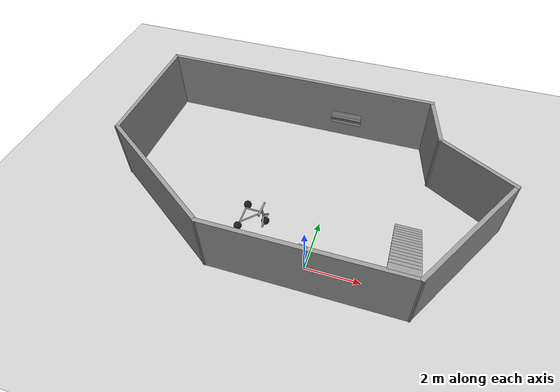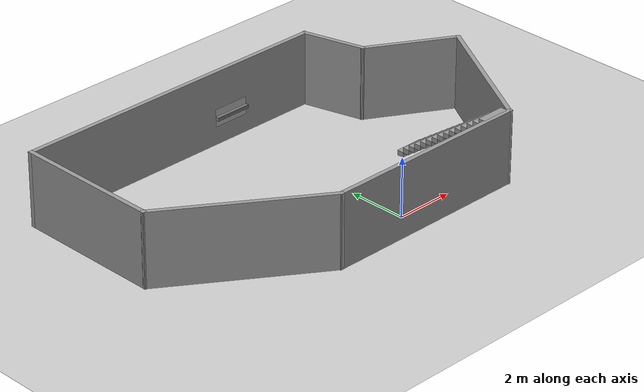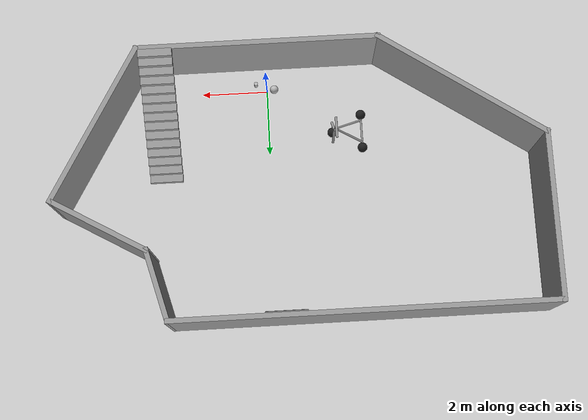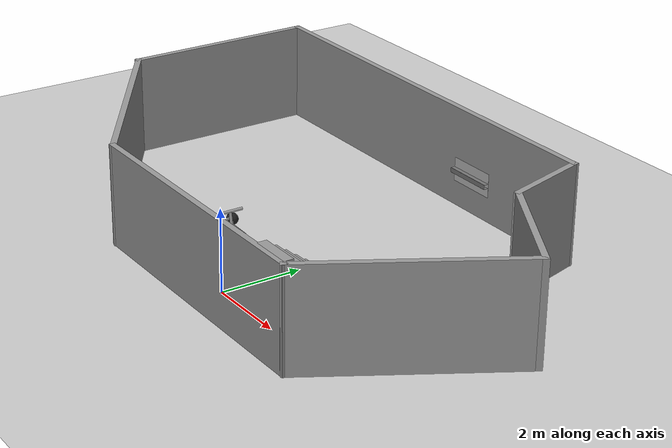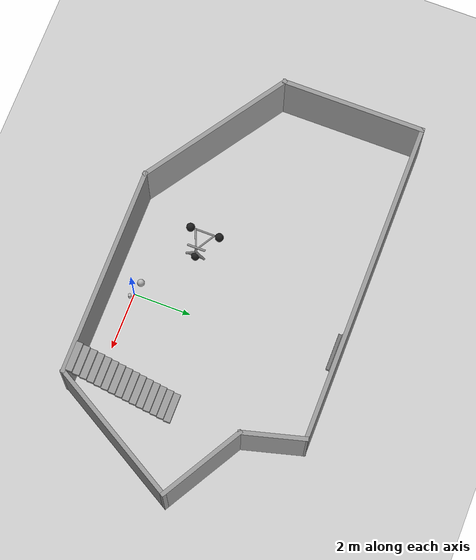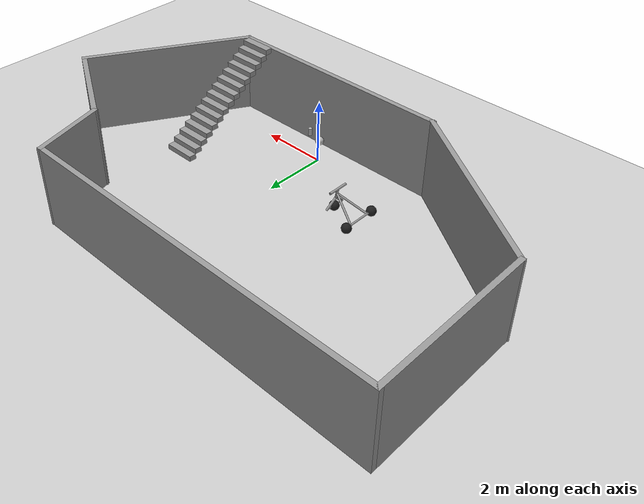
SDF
<sdf version="1.6">
 <world name="default">
  <light name="sun" type="directional">
   <pose>0 0 10 0 -0 0</pose>
   <diffuse>0.8 0.8 0.8 1</diffuse>
   <specular>0.2 0.2 0.2 1</specular>
   <attenuation>
    <range>1000</range>
    <constant>0.9</constant>
    <linear>0.01</linear>
    <quadratic>0.001</quadratic>
   </attenuation>
   <direction>-0.5 0.1 -0.9</direction>
  </light>
  <model name="ground_plane">
   <static>1</static>
   <link name="link">
    <collision name="collision">
     <geometry><plane><normal>0 0 1</normal><size>100 100</size></plane></geometry>
     <surface>
      <contact><collide_bitmask>65535</collide_bitmask></contact>
      <friction><ode><mu>100</mu><mu2>50</mu2></ode></friction>
     </surface>
    </collision>
    <visual name="visual">
     <cast_shadows>0</cast_shadows>
     <geometry><plane><normal>0 0 1</normal><size>100 100</size></plane></geometry>
     <material>
      <script><uri>file://media/materials/scripts/gazebo.material</uri><name>Gazebo/Grey</name></script>
     </material>
    </visual>
   </link>
  </model>
  <gravity>0 0 -9.8</gravity>
  <magnetic_field>6e-06 2.3e-05 -4.2e-05</magnetic_field>
  <atmosphere type="adiabatic"/>
  <physics name="default_physics" default="0" type="ode">
   <max_step_size>0.001</max_step_size>
   <real_time_factor>1</real_time_factor>
   <real_time_update_rate>1000</real_time_update_rate>
  </physics>
  <scene><ambient>0.4 0.4 0.4 1</ambient><background>0.7 0.7 0.7 1</background><shadows>1</shadows></scene>
  <audio><device>default</device></audio>
  <spherical_coordinates>
   <surface_model>EARTH_WGS84</surface_model>
   <latitude_deg>0</latitude_deg>
   <longitude_deg>0</longitude_deg>
   <elevation>0</elevation>
   <heading_deg>0</heading_deg>
  </spherical_coordinates>
  <model name="salinhasimples">
   <pose>-0.864299 3.18437 0 0 -0 0</pose>
   <link name="Stairs_1">
    <visual name="Stairs_1_Visual_0">
     <pose>4.06078 -0.564021 0.083333 0 -0 0</pose>
     <geometry><box><size>1 0.233333 0.166667</size></box></geometry>
     <material>
      <script><uri>file://media/materials/scripts/gazebo.material</uri><name>Gazebo/Grey</name></script>
      <ambient>1 1 1 1</ambient>
     </material>
     <meta><layer>0</layer></meta>
    </visual>
    <collision name="Stairs_1_Collision_0">
     <geometry><box><size>1 0.233333 0.166667</size></box></geometry>
     <pose>4.06078 -0.564021 0.083333 0 -0 0</pose>
    </collision>
    <visual name="Stairs_1_Visual_1">
     <pose>4.06078 -0.797355 0.25 0 -0 0</pose>
     <geometry><box><size>1 0.233333 0.166667</size></box></geometry>
     <material>
      <script><uri>file://media/materials/scripts/gazebo.material</uri><name>Gazebo/Grey</name></script>
      <ambient>1 1 1 1</ambient>
     </material>
     <meta><layer>0</layer></meta>
    </visual>
    <collision name="Stairs_1_Collision_1">
     <geometry><box><size>1 0.233333 0.166667</size></box></geometry>
     <pose>4.06078 -0.797355 0.25 0 -0 0</pose>
    </collision>
    <visual name="Stairs_1_Visual_2">
     <pose>4.06078 -1.03069 0.416667 0 -0 0</pose>
     <geometry><box><size>1 0.233333 0.166667</size></box></geometry>
     <material>
      <script><uri>file://media/materials/scripts/gazebo.material</uri><name>Gazebo/Grey</name></script>
      <ambient>1 1 1 1</ambient>
     </material>
     <meta><layer>0</layer></meta>
    </visual>
    <collision name="Stairs_1_Collision_2">
     <geometry><box><size>1 0.233333 0.166667</size></box></geometry>
     <pose>4.06078 -1.03069 0.416667 0 -0 0</pose>
    </collision>
    <visual name="Stairs_1_Visual_3">
     <pose>4.06078 -1.26402 0.583333 0 -0 0</pose>
     <geometry><box><size>1 0.233333 0.166667</size></box></geometry>
     <material>
      <script><uri>file://media/materials/scripts/gazebo.material</uri><name>Gazebo/Grey</name></script>
      <ambient>1 1 1 1</ambient>
     </material>
     <meta><layer>0</layer></meta>
    </visual>
    <collision name="Stairs_1_Collision_3">
     <geometry><box><size>1 0.233333 0.166667</size></box></geometry>
     <pose>4.06078 -1.26402 0.583333 0 -0 0</pose>
    </collision>
    <visual name="Stairs_1_Visual_4">
     <pose>4.06078 -1.49735 0.75 0 -0 0</pose>
     <geometry><box><size>1 0.233333 0.166667</size></box></geometry>
     <material>
      <script><uri>file://media/materials/scripts/gazebo.material</uri><name>Gazebo/Grey</name></script>
      <ambient>1 1 1 1</ambient>
     </material>
     <meta><layer>0</layer></meta>
    </visual>
    <collision name="Stairs_1_Collision_4">
     <geometry><box><size>1 0.233333 0.166667</size></box></geometry>
     <pose>4.06078 -1.49735 0.75 0 -0 0</pose>
    </collision>
    <visual name="Stairs_1_Visual_5">
     <pose>4.06078 -1.73069 0.916667 0 -0 0</pose>
     <geometry><box><size>1 0.233333 0.166667</size></box></geometry>
     <material>
      <script><uri>file://media/materials/scripts/gazebo.material</uri><name>Gazebo/Grey</name></script>
      <ambient>1 1 1 1</ambient>
     </material>
     <meta><layer>0</layer></meta>
    </visual>
    <collision name="Stairs_1_Collision_5">
     <geometry><box><size>1 0.233333 0.166667</size></box></geometry>
     <pose>4.06078 -1.73069 0.916667 0 -0 0</pose>
    </collision>
    <visual name="Stairs_1_Visual_6">
     <pose>4.06078 -1.96402 1.08333 0 -0 0</pose>
     <geometry><box><size>1 0.233333 0.166667</size></box></geometry>
     <material>
      <script><uri>file://media/materials/scripts/gazebo.material</uri><name>Gazebo/Grey</name></script>
      <ambient>1 1 1 1</ambient>
     </material>
     <meta><layer>0</layer></meta>
    </visual>
    <collision name="Stairs_1_Collision_6">
     <geometry><box><size>1 0.233333 0.166667</size></box></geometry>
     <pose>4.06078 -1.96402 1.08333 0 -0 0</pose>
    </collision>
    <visual name="Stairs_1_Visual_7">
     <pose>4.06078 -2.19735 1.25 0 -0 0</pose>
     <geometry><box><size>1 0.233333 0.166667</size></box></geometry>
     <material>
      <script><uri>file://media/materials/scripts/gazebo.material</uri><name>Gazebo/Grey</name></script>
      <ambient>1 1 1 1</ambient>
     </material>
     <meta><layer>0</layer></meta>
    </visual>
    <collision name="Stairs_1_Collision_7">
     <geometry><box><size>1 0.233333 0.166667</size></box></geometry>
     <pose>4.06078 -2.19735 1.25 0 -0 0</pose>
    </collision>
    <visual name="Stairs_1_Visual_8">
     <pose>4.06078 -2.43069 1.41667 0 -0 0</pose>
     <geometry><box><size>1 0.233333 0.166667</size></box></geometry>
     <material>
      <script><uri>file://media/materials/scripts/gazebo.material</uri><name>Gazebo/Grey</name></script>
      <ambient>1 1 1 1</ambient>
     </material>
     <meta><layer>0</layer></meta>
    </visual>
    <collision name="Stairs_1_Collision_8">
     <geometry><box><size>1 0.233333 0.166667</size></box></geometry>
     <pose>4.06078 -2.43069 1.41667 0 -0 0</pose>
    </collision>
    <visual name="Stairs_1_Visual_9">
     <pose>4.06078 -2.66402 1.58333 0 -0 0</pose>
     <geometry><box><size>1 0.233333 0.166667</size></box></geometry>
     <material>
      <script><uri>file://media/materials/scripts/gazebo.material</uri><name>Gazebo/Grey</name></script>
      <ambient>1 1 1 1</ambient>
     </material>
     <meta><layer>0</layer></meta>
    </visual>
    <collision name="Stairs_1_Collision_9">
     <geometry><box><size>1 0.233333 0.166667</size></box></geometry>
     <pose>4.06078 -2.66402 1.58333 0 -0 0</pose>
    </collision>
    <visual name="Stairs_1_Visual_10">
     <pose>4.06078 -2.89736 1.75 0 -0 0</pose>
     <geometry><box><size>1 0.233333 0.166667</size></box></geometry>
     <material>
      <script><uri>file://media/materials/scripts/gazebo.material</uri><name>Gazebo/Grey</name></script>
      <ambient>1 1 1 1</ambient>
     </material>
     <meta><layer>0</layer></meta>
    </visual>
    <collision name="Stairs_1_Collision_10">
     <geometry><box><size>1 0.233333 0.166667</size></box></geometry>
     <pose>4.06078 -2.89736 1.75 0 -0 0</pose>
    </collision>
    <visual name="Stairs_1_Visual_11">
     <pose>4.06078 -3.13069 1.91667 0 -0 0</pose>
     <geometry><box><size>1 0.233333 0.166667</size></box></geometry>
     <material>
      <script><uri>file://media/materials/scripts/gazebo.material</uri><name>Gazebo/Grey</name></script>
      <ambient>1 1 1 1</ambient>
     </material>
     <meta><layer>0</layer></meta>
    </visual>
    <collision name="Stairs_1_Collision_11">
     <geometry><box><size>1 0.233333 0.166667</size></box></geometry>
     <pose>4.06078 -3.13069 1.91667 0 -0 0</pose>
    </collision>
    <visual name="Stairs_1_Visual_12">
     <pose>4.06078 -3.36402 2.08333 0 -0 0</pose>
     <geometry><box><size>1 0.233333 0.166667</size></box></geometry>
     <material>
      <script><uri>file://media/materials/scripts/gazebo.material</uri><name>Gazebo/Grey</name></script>
      <ambient>1 1 1 1</ambient>
     </material>
     <meta><layer>0</layer></meta>
    </visual>
    <collision name="Stairs_1_Collision_12">
     <geometry><box><size>1 0.233333 0.166667</size></box></geometry>
     <pose>4.06078 -3.36402 2.08333 0 -0 0</pose>
    </collision>
    <visual name="Stairs_1_Visual_13">
     <pose>4.06078 -3.59735 2.25 0 -0 0</pose>
     <geometry><box><size>1 0.233333 0.166667</size></box></geometry>
     <material>
      <script><uri>file://media/materials/scripts/gazebo.material</uri><name>Gazebo/Grey</name></script>
      <ambient>1 1 1 1</ambient>
     </material>
     <meta><layer>0</layer></meta>
    </visual>
    <collision name="Stairs_1_Collision_13">
     <geometry><box><size>1 0.233333 0.166667</size></box></geometry>
     <pose>4.06078 -3.59735 2.25 0 -0 0</pose>
    </collision>
    <visual name="Stairs_1_Visual_14">
     <pose>4.06078 -3.83069 2.41667 0 -0 0</pose>
     <geometry><box><size>1 0.233333 0.166667</size></box></geometry>
     <material>
      <script><uri>file://media/materials/scripts/gazebo.material</uri><name>Gazebo/Grey</name></script>
      <ambient>1 1 1 1</ambient>
     </material>
     <meta><layer>0</layer></meta>
    </visual>
    <collision name="Stairs_1_Collision_14">
     <geometry><box><size>1 0.233333 0.166667</size></box></geometry>
     <pose>4.06078 -3.83069 2.41667 0 -0 0</pose>
    </collision>
   </link>
   <link name="Wall_3">
    <collision name="Wall_3_Collision">
     <geometry><box><size>7.25 0.15 2.5</size></box></geometry>
     <pose>0 0 1.25 0 -0 0</pose>
    </collision>
    <visual name="Wall_3_Visual">
     <pose>0 0 1.25 0 -0 0</pose>
     <geometry><box><size>7.25 0.15 2.5</size></box></geometry>
     <material>
      <script><uri>file://media/materials/scripts/gazebo.material</uri><name>Gazebo/Grey</name></script>
      <ambient>1 1 1 1</ambient>
     </material>
     <meta><layer>0</layer></meta>
    </visual>
    <pose>1.06492 -3.99147 0 0 -0 0</pose>
   </link>
   <link name="Wall_4">
    <collision name="Wall_4_Collision">
     <geometry><box><size>5.25 0.15 2.5</size></box></geometry>
     <pose>0 0 1.25 0 -0 0</pose>
    </collision>
    <visual name="Wall_4_Visual">
     <pose>0 0 1.25 0 -0 0</pose>
     <geometry><box><size>5.25 0.15 2.5</size></box></geometry>
     <material>
      <script><uri>file://media/materials/scripts/gazebo.material</uri><name>Gazebo/Grey</name></script>
      <ambient>1 1 1 1</ambient>
     </material>
     <meta><layer>0</layer></meta>
    </visual>
    <pose>5.88992 -1.78311 0 0 -0 1.0472</pose>
   </link>
   <link name="Wall_5">
    <collision name="Wall_5_Collision">
     <geometry><box><size>3.25 0.15 2.5</size></box></geometry>
     <pose>0 0 1.25 0 -0 0</pose>
    </collision>
    <visual name="Wall_5_Visual">
     <pose>0 0 1.25 0 -0 0</pose>
     <geometry><box><size>3.25 0.15 2.5</size></box></geometry>
     <material>
      <script><uri>file://media/materials/scripts/gazebo.material</uri><name>Gazebo/Grey</name></script>
      <ambient>1 1 1 1</ambient>
     </material>
     <meta><layer>0</layer></meta>
    </visual>
    <pose>5.82258 1.20026 0 0 -0 2.61799</pose>
   </link>
   <link name="Wall_6">
    <collision name="Wall_6_Collision">
     <geometry><box><size>2.25 0.15 2.5</size></box></geometry>
     <pose>0 0 1.25 0 -0 0</pose>
    </collision>
    <visual name="Wall_6_Visual">
     <pose>0 0 1.25 0 -0 0</pose>
     <geometry><box><size>2.25 0.15 2.5</size></box></geometry>
     <material>
      <script><uri>file://media/materials/scripts/gazebo.material</uri><name>Gazebo/Grey</name></script>
      <ambient>1 1 1 1</ambient>
     </material>
     <meta><layer>0</layer></meta>
    </visual>
    <pose>4.20848 2.98948 0 0 -0 1.8326</pose>
   </link>
   <link name="Wall_7">
    <collision name="Wall_7_Collision">
     <geometry><box><size>11.25 0.15 2.5</size></box></geometry>
     <pose>0 0 1.25 0 -0 0</pose>
    </collision>
    <visual name="Wall_7_Visual">
     <pose>0 0 1.25 0 -0 0</pose>
     <geometry><box><size>11.25 0.15 2.5</size></box></geometry>
     <material>
      <script><uri>file://media/materials/scripts/gazebo.material</uri><name>Gazebo/Grey</name></script>
      <ambient>1 1 1 1</ambient>
     </material>
     <meta><layer>0</layer></meta>
    </visual>
    <pose>-1.61328 4.0037 0 0 -0 3.14159</pose>
   </link>
   <link name="Wall_8">
    <collision name="Wall_8_Collision">
     <geometry><box><size>5 0.15 2.5</size></box></geometry>
     <pose>0 0 1.25 0 -0 0</pose>
    </collision>
    <visual name="Wall_8_Visual">
     <pose>0 0 1.25 0 -0 0</pose>
     <geometry><box><size>5 0.15 2.5</size></box></geometry>
     <material>
      <script><uri>file://media/materials/scripts/gazebo.material</uri><name>Gazebo/Grey</name></script>
      <ambient>1 1 1 1</ambient>
     </material>
     <meta><layer>0</layer></meta>
    </visual>
    <pose>-7.16328 1.5787 0 0 -0 -1.5708</pose>
   </link>
   <link name="Wall_9">
    <collision name="Wall_9_Collision">
     <geometry><box><size>5.78717 0.15 2.5</size></box></geometry>
     <pose>0 0 1.25 0 -0 0</pose>
    </collision>
    <visual name="Wall_9_Visual">
     <pose>0 0 1.25 0 -0 0</pose>
     <geometry><box><size>5.78717 0.15 2.5</size></box></geometry>
     <material>
      <script><uri>file://media/materials/scripts/gazebo.material</uri><name>Gazebo/Grey</name></script>
      <ambient>1 1 1 1</ambient>
     </material>
     <meta><layer>0</layer></meta>
    </visual>
    <pose>-4.82418 -2.41888 0 0 -0 -0.591896</pose>
   </link>
   <static>1</static>
  </model>
  <model name="beer">
   <link name="link">
    <pose>0 0 0.115 0 -0 0</pose>
    <inertial>
     <mass>0.39</mass>
     <inertia><ixx>0.00058</ixx><ixy>0</ixy><ixz>0</ixz><iyy>0.00058</iyy><iyz>0</iyz><izz>0.00019</izz></inertia>
    </inertial>
    <collision name="collision">
     <geometry><cylinder><radius>0.055</radius><length>0.23</length></cylinder></geometry>
    </collision>
    <visual name="visual">
     <geometry><cylinder><radius>0.055</radius><length>0.23</length></cylinder></geometry>
     <material>
      <script>
       <uri>model://beer/materials/scripts</uri>
       <uri>model://beer/materials/textures</uri>
       <name>Beer/Diffuse</name>
      </script>
     </material>
    </visual>
   </link>
   <pose>0.315762 0.01734 0.774991 1.1e-05 -1.7e-05 0.0585</pose>
  </model>
  <model name="frc2016_rockwall">
   <static>1</static>
   <link name="link">
    <inertial>
     <mass>10</mass>
     <pose>0 0 0.08974 0 -0 0</pose>
     <inertia><ixx>0.327091</ixx><ixy>0</ixy><ixz>0</ixz><iyy>1.37417</iyy><iyz>0</iyz><izz>1.64109</izz></inertia>
    </inertial>
    <visual name="platform">
     <pose>0 0 0.06432 0 -0 0</pose>
     <geometry><box><size>1.27 0.5969 0.003175</size></box></geometry>
    </visual>
    <collision name="platform">
     <pose>0 0 0.06432 0 -0 0</pose>
     <geometry><box><size>1.27 0.5969 0.003175</size></box></geometry>
    </collision>
    <visual name="up1">
     <pose>0 0.05166 0.12537 0 -0 0</pose>
     <geometry><box><size>1.27 0.00462 0.11892</size></box></geometry>
     <material><ambient>0.46 0.46 0.46 1</ambient><diffuse>0.46 0.46 0.46 1</diffuse></material>
    </visual>
    <collision name="up1">
     <pose>0 0.05166 0.12537 0 -0 0</pose>
     <geometry><box><size>1.27 0.00462 0.11892</size></box></geometry>
    </collision>
    <visual name="up2">
     <pose>0 -0.05801 0.12537 0 -0 0</pose>
     <geometry><box><size>1.27 0.00462 0.11892</size></box></geometry>
     <material><ambient>0.46 0.46 0.46 1</ambient><diffuse>0.46 0.46 0.46 1</diffuse></material>
    </visual>
    <collision name="up2">
     <pose>0 -0.05801 0.12537 0 -0 0</pose>
     <geometry><box><size>1.27 0.00462 0.11892</size></box></geometry>
    </collision>
    <visual name="top">
     <pose>0 -0.00249 0.18252 0 -0 0</pose>
     <geometry><box><size>1.27 0.1143 0.00462</size></box></geometry>
     <material><ambient>0.46 0.46 0.46 1</ambient><diffuse>0.46 0.46 0.46 1</diffuse></material>
    </visual>
    <collision name="top">
     <pose>0 -0.00249 0.18252 0 -0 0</pose>
     <geometry><box><size>1.27 0.1143 0.00462</size></box></geometry>
    </collision>
   </link>
   <pose>-0.256088 7.11059 0.967639 1.5614 -0 0</pose>
  </model>
  <model name="frc2016_ball">
   <pose>-0.229162 0.201904 0.901716 0.002066 0.000652 -8.8e-05</pose>
   <link name="link">
    <inertial>
     <mass>0.213</mass>
     <inertia>
      <ixx>0.00322667</ixx>
      <ixy>0</ixy>
      <ixz>0</ixz>
      <iyy>0.00322667</iyy>
      <iyz>0</iyz>
      <izz>0.00322667</izz>
     </inertia>
    </inertial>
    <visual name="visual"><geometry><sphere><radius>0.127</radius></sphere></geometry></visual>
    <collision name="collision">
     <geometry><sphere><radius>0.127</radius></sphere></geometry>
     <surface>
      <bounce><restitution_coefficient>0.15937</restitution_coefficient><threshold>0</threshold></bounce>
      <contact><ode><max_vel>100</max_vel><min_depth>0.001</min_depth></ode></contact>
     </surface>
    </collision>
   </link>
  </model>
  <model name="trisphere_cycle">
   <link name="frame">
    <pose>-0.408559 0 0.385023 0 -0.522021 0</pose>
    <inertial>
     <mass>10</mass>
     <inertia><ixx>0.228</ixx><iyy>0.743521</iyy><izz>0.965521</izz><ixy>0</ixy><ixz>0</ixz><iyz>0</iyz></inertia>
    </inertial>
    <collision name="axle_collision">
     <pose>-0.471335 0 0 1.5708 -0 0</pose>
     <geometry><cylinder><length>1.03923</length><radius>0.03</radius></cylinder></geometry>
    </collision>
    <visual name="axle_visual">
     <pose>-0.471335 0 0 1.5708 -0 0</pose>
     <geometry><cylinder><length>1.03923</length><radius>0.03</radius></cylinder></geometry>
     <material>
      <script><uri>file://media/materials/scripts/gazebo.material</uri><name>Gazebo/Grey</name></script>
     </material>
    </visual>
    <collision name="frame_left_collision">
     <pose>0 0.171552 0 -2.79253 1.57079 3.14159</pose>
     <geometry><cylinder><length>1.00317</length><radius>0.03</radius></cylinder></geometry>
    </collision>
    <visual name="frame_left_visual">
     <pose>0 0.171552 0 -2.79253 1.57079 3.14159</pose>
     <geometry><cylinder><length>1.00317</length><radius>0.03</radius></cylinder></geometry>
     <material>
      <script><uri>file://media/materials/scripts/gazebo.material</uri><name>Gazebo/Grey</name></script>
     </material>
    </visual>
    <collision name="frame_right_collision">
     <pose>0 -0.171552 0 2.79253 1.57079 -3.14159</pose>
     <geometry><cylinder><length>1.00317</length><radius>0.03</radius></cylinder></geometry>
    </collision>
    <visual name="frame_right_visual">
     <pose>0 -0.171552 0 2.79253 1.57079 -3.14159</pose>
     <geometry><cylinder><length>1.00317</length><radius>0.03</radius></cylinder></geometry>
     <material>
      <script><uri>file://media/materials/scripts/gazebo.material</uri><name>Gazebo/Grey</name></script>
     </material>
    </visual>
   </link>
   <link name="fork">
    <pose>0.041441 0 0.385023 0 -0.174533 0</pose>
    <inertial>
     <mass>3</mass>
     <inertia>
      <ixx>0.158203</ixx>
      <iyy>0.0583594</iyy>
      <izz>0.102656</izz>
      <ixy>0</ixy>
      <ixz>0</ixz>
      <iyz>0</iyz>
     </inertia>
    </inertial>
    <collision name="handlebars_collision">
     <pose>0 0 0.397748 1.5708 -0 0</pose>
     <geometry><cylinder><length>0.636396</length><radius>0.0375</radius></cylinder></geometry>
    </collision>
    <visual name="handlebars_visual">
     <pose>0 0 0.397748 1.5708 -0 0</pose>
     <geometry><cylinder><length>0.636396</length><radius>0.0375</radius></cylinder></geometry>
     <material>
      <script><uri>file://media/materials/scripts/gazebo.material</uri><name>Gazebo/Grey</name></script>
     </material>
    </visual>
    <collision name="headtube_collision">
     <pose>0 0 0.238649 0 -0 0</pose>
     <geometry><cylinder><length>0.318198</length><radius>0.0375</radius></cylinder></geometry>
    </collision>
    <visual name="headtube_visual">
     <pose>0 0 0.238649 0 -0 0</pose>
     <geometry><cylinder><length>0.318198</length><radius>0.0375</radius></cylinder></geometry>
     <material>
      <script><uri>file://media/materials/scripts/gazebo.material</uri><name>Gazebo/Grey</name></script>
     </material>
    </visual>
    <collision name="spindle_collision">
     <pose>0 0 -0.238649 1.5708 -0 0</pose>
     <geometry><cylinder><length>0.636396</length><radius>0.015</radius></cylinder></geometry>
    </collision>
    <visual name="spindle_visual">
     <pose>0 0 -0.238649 1.5708 -0 0</pose>
     <geometry><cylinder><length>0.636396</length><radius>0.015</radius></cylinder></geometry>
     <material>
      <script><uri>file://media/materials/scripts/gazebo.material</uri><name>Gazebo/Grey</name></script>
     </material>
    </visual>
    <collision name="fork_left_collision">
     <pose>0 0.159099 -0.07955 0.785398 -0 0</pose>
     <geometry><cylinder><length>0.45</length><radius>0.0375</radius></cylinder></geometry>
    </collision>
    <visual name="fork_left_visual">
     <pose>0 0.159099 -0.07955 0.785398 -0 0</pose>
     <geometry><cylinder><length>0.45</length><radius>0.0375</radius></cylinder></geometry>
     <material>
      <script><uri>file://media/materials/scripts/gazebo.material</uri><name>Gazebo/Grey</name></script>
     </material>
    </visual>
    <collision name="fork_right_collision">
     <pose>0 -0.159099 -0.07955 -0.785398 0 0</pose>
     <geometry><cylinder><length>0.45</length><radius>0.0375</radius></cylinder></geometry>
    </collision>
    <visual name="fork_right_visual">
     <pose>0 -0.159099 -0.07955 -0.785398 0 0</pose>
     <geometry><cylinder><length>0.45</length><radius>0.0375</radius></cylinder></geometry>
     <material>
      <script><uri>file://media/materials/scripts/gazebo.material</uri><name>Gazebo/Grey</name></script>
     </material>
    </visual>
   </link>
   <link name="wheel_front">
    <pose>0.082882 0 0.15 0 -0 0</pose>
    <inertial>
     <mass>0.5</mass>
     <inertia><ixx>0.0045</ixx><iyy>0.0045</iyy><izz>0.0045</izz><ixy>0</ixy><ixz>0</ixz><iyz>0</iyz></inertia>
    </inertial>
    <collision name="collision">
     <geometry><sphere><radius>0.15</radius></sphere></geometry>
     <surface><contact><ode><kp>1e+08</kp><kd>1</kd><min_depth>0.0005</min_depth></ode></contact></surface>
    </collision>
    <visual name="visual">
     <geometry><sphere><radius>0.15</radius></sphere></geometry>
     <material>
      <script><uri>file://media/materials/scripts/gazebo.material</uri><name>Gazebo/Black</name></script>
     </material>
    </visual>
   </link>
   <joint name="wheel_front_steer" type="revolute">
    <parent>frame</parent>
    <child>fork</child>
    <axis>
     <xyz>0 0 1</xyz>
     <limit><lower>-0.959931</lower><upper>0.959931</upper></limit>
     <use_parent_model_frame>0</use_parent_model_frame>
     <dynamics><spring_reference>0</spring_reference><spring_stiffness>0</spring_stiffness></dynamics>
    </axis>
   </joint>
   <joint name="wheel_front_spin" type="revolute">
    <parent>fork</parent>
    <child>wheel_front</child>
    <axis>
     <xyz>0 1 0</xyz>
     <use_parent_model_frame>0</use_parent_model_frame>
     <limit><lower>-1e+16</lower><upper>1e+16</upper></limit>
     <dynamics><spring_reference>0</spring_reference><spring_stiffness>0</spring_stiffness></dynamics>
    </axis>
   </joint>
   <link name="wheel_rear_left">
    <pose>-0.817118 0.519615 0.15 0 -0 0</pose>
    <inertial>
     <mass>0.5</mass>
     <inertia><ixx>0.0045</ixx><iyy>0.0045</iyy><izz>0.0045</izz><ixy>0</ixy><ixz>0</ixz><iyz>0</iyz></inertia>
    </inertial>
    <collision name="collision">
     <geometry><sphere><radius>0.15</radius></sphere></geometry>
     <surface><contact><ode><kp>1e+08</kp><kd>1</kd><min_depth>0.0005</min_depth></ode></contact></surface>
    </collision>
    <visual name="visual">
     <geometry><sphere><radius>0.15</radius></sphere></geometry>
     <material>
      <script><uri>file://media/materials/scripts/gazebo.material</uri><name>Gazebo/Black</name></script>
     </material>
    </visual>
   </link>
   <joint name="wheel_rear_left_spin" type="revolute">
    <parent>frame</parent>
    <child>wheel_rear_left</child>
    <axis>
     <xyz>0 1 0</xyz>
     <use_parent_model_frame>0</use_parent_model_frame>
     <limit><lower>-1e+16</lower><upper>1e+16</upper></limit>
     <dynamics><spring_reference>0</spring_reference><spring_stiffness>0</spring_stiffness></dynamics>
    </axis>
   </joint>
   <link name="wheel_rear_right">
    <pose>-0.817118 -0.519615 0.15 0 -0 0</pose>
    <inertial>
     <mass>0.5</mass>
     <inertia><ixx>0.0045</ixx><iyy>0.0045</iyy><izz>0.0045</izz><ixy>0</ixy><ixz>0</ixz><iyz>0</iyz></inertia>
    </inertial>
    <collision name="collision">
     <geometry><sphere><radius>0.15</radius></sphere></geometry>
     <surface><contact><ode><kp>1e+08</kp><kd>1</kd><min_depth>0.0005</min_depth></ode></contact></surface>
    </collision>
    <visual name="visual">
     <geometry><sphere><radius>0.15</radius></sphere></geometry>
     <material>
      <script><uri>file://media/materials/scripts/gazebo.material</uri><name>Gazebo/Black</name></script>
     </material>
    </visual>
   </link>
   <joint name="wheel_rear_right_spin" type="revolute">
    <parent>frame</parent>
    <child>wheel_rear_right</child>
    <axis>
     <xyz>0 1 0</xyz>
     <use_parent_model_frame>0</use_parent_model_frame>
     <limit><lower>-1e+16</lower><upper>1e+16</upper></limit>
     <dynamics><spring_reference>0</spring_reference><spring_stiffness>0</spring_stiffness></dynamics>
    </axis>
   </joint>
   <pose>-2.02882 1.45379 -0.000501 -0 1e-06 -0.00049</pose>
  </model>
 </world>
</sdf>
